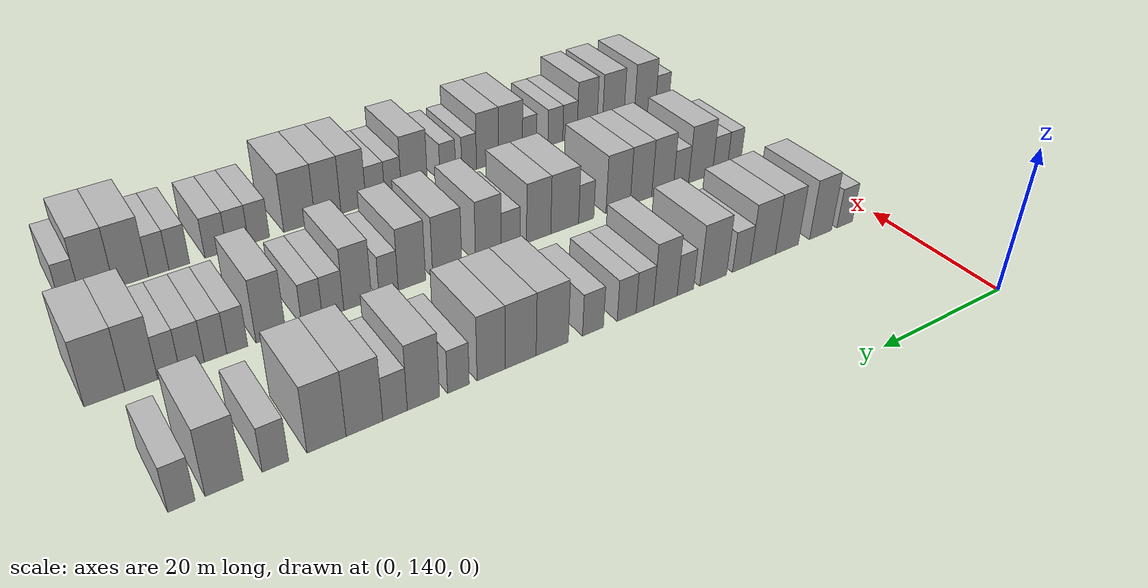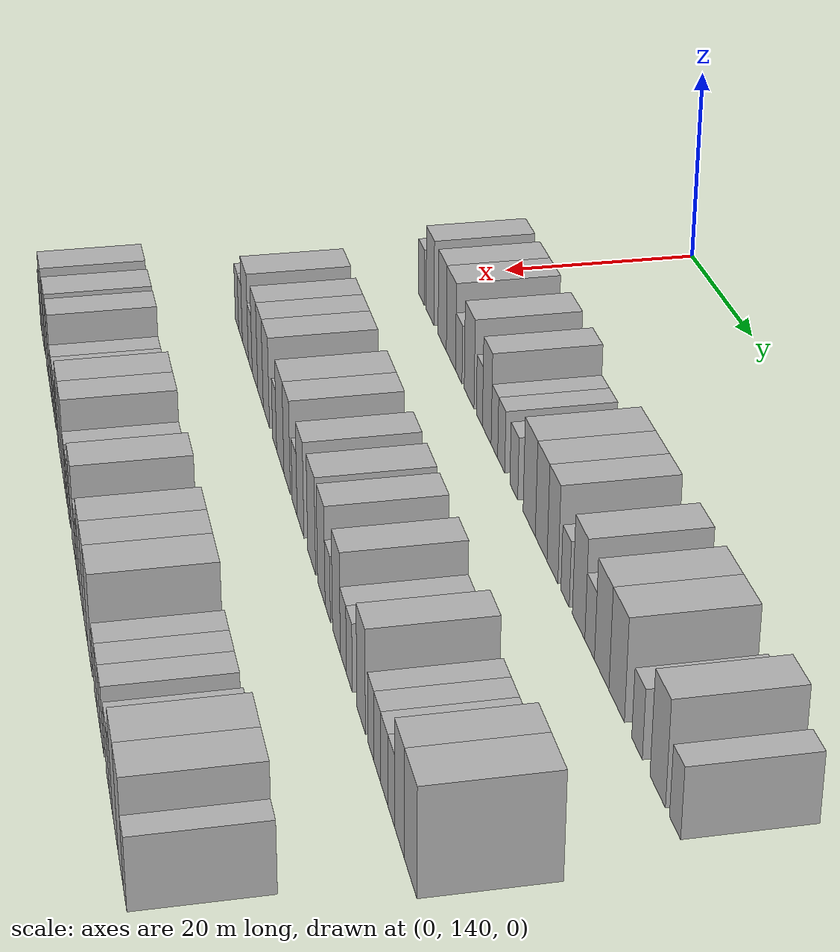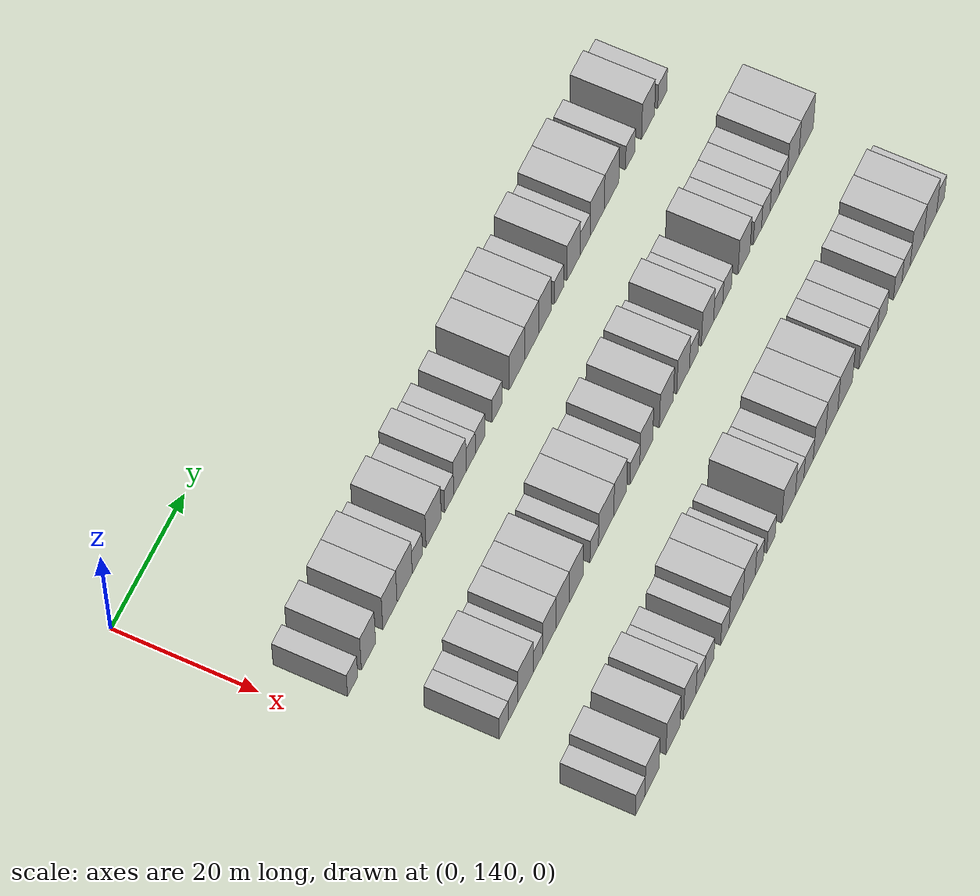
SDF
<sdf version="1.6">
 <world name="default">
  <model name="building_94">
   <static>1</static>
   <pose>25.0000 145.4608 0 0.000000 0.000000 0.000000</pose>
   <link name="link">
    <pose>0 0 3.00 0 0 0</pose>
    <collision name="collision"><geometry><box><size>10.0000 2.8447 6.0000</size></box></geometry></collision>
    <visual name="visual">
     <cast_shadows>0</cast_shadows>
     <geometry><box><size>10.0000 2.8447 6.0000</size></box></geometry>
     <material>
      <script>
       <uri>model://HANNAS_wall/materials/scripts</uri>
       <uri>model://HANNAS_wall/materials/textures</uri>
       <name>vrc/HANNAS_wall</name>
      </script>
     </material>
    </visual>
   </link>
  </model>
  <model name="building_95">
   <static>1</static>
   <pose>25.0000 149.8707 0 0.000000 0.000000 0.000000</pose>
   <link name="link">
    <pose>0 0 4.50 0 0 0</pose>
    <collision name="collision"><geometry><box><size>10.0000 3.9750 9.0000</size></box></geometry></collision>
    <visual name="visual">
     <cast_shadows>0</cast_shadows>
     <geometry><box><size>10.0000 3.9750 9.0000</size></box></geometry>
     <material>
      <script>
       <uri>model://HANNAS_wall/materials/scripts</uri>
       <uri>model://HANNAS_wall/materials/textures</uri>
       <name>vrc/HANNAS_wall</name>
      </script>
     </material>
    </visual>
   </link>
  </model>
  <model name="building_96">
   <static>1</static>
   <pose>25.0000 155.8541 0 0.000000 0.000000 0.000000</pose>
   <link name="link">
    <pose>0 0 4.50 0 0 0</pose>
    <collision name="collision"><geometry><box><size>10.0000 3.9918 9.0000</size></box></geometry></collision>
    <visual name="visual">
     <cast_shadows>0</cast_shadows>
     <geometry><box><size>10.0000 3.9918 9.0000</size></box></geometry>
     <material>
      <script>
       <uri>model://HANNAS_wall/materials/scripts</uri>
       <uri>model://HANNAS_wall/materials/textures</uri>
       <name>vrc/HANNAS_wall</name>
      </script>
     </material>
    </visual>
   </link>
  </model>
  <model name="building_97">
   <static>1</static>
   <pose>25.0000 159.9888 0 0.000000 0.000000 0.000000</pose>
   <link name="link">
    <pose>0 0 4.50 0 0 0</pose>
    <collision name="collision"><geometry><box><size>10.0000 4.2777 9.0000</size></box></geometry></collision>
    <visual name="visual">
     <cast_shadows>0</cast_shadows>
     <geometry><box><size>10.0000 4.2777 9.0000</size></box></geometry>
     <material>
      <script>
       <uri>model://HANNAS_wall/materials/scripts</uri>
       <uri>model://HANNAS_wall/materials/textures</uri>
       <name>vrc/HANNAS_wall</name>
      </script>
     </material>
    </visual>
   </link>
  </model>
  <model name="building_98">
   <static>1</static>
   <pose>25.0000 163.5937 0 0.000000 0.000000 0.000000</pose>
   <link name="link">
    <pose>0 0 3.00 0 0 0</pose>
    <collision name="collision"><geometry><box><size>10.0000 2.9319 6.0000</size></box></geometry></collision>
    <visual name="visual">
     <cast_shadows>0</cast_shadows>
     <geometry><box><size>10.0000 2.9319 6.0000</size></box></geometry>
     <material>
      <script>
       <uri>model://HANNAS_wall/materials/scripts</uri>
       <uri>model://HANNAS_wall/materials/textures</uri>
       <name>vrc/HANNAS_wall</name>
      </script>
     </material>
    </visual>
   </link>
  </model>
  <model name="building_99">
   <static>1</static>
   <pose>25.0000 168.2028 0 0.000000 0.000000 0.000000</pose>
   <link name="link">
    <pose>0 0 4.50 0 0 0</pose>
    <collision name="collision"><geometry><box><size>10.0000 4.2863 9.0000</size></box></geometry></collision>
    <visual name="visual">
     <cast_shadows>0</cast_shadows>
     <geometry><box><size>10.0000 4.2863 9.0000</size></box></geometry>
     <material>
      <script>
       <uri>model://HANNAS_wall/materials/scripts</uri>
       <uri>model://HANNAS_wall/materials/textures</uri>
       <name>vrc/HANNAS_wall</name>
      </script>
     </material>
    </visual>
   </link>
  </model>
  <model name="building_100">
   <static>1</static>
   <pose>25.0000 172.6326 0 0.000000 0.000000 0.000000</pose>
   <link name="link">
    <pose>0 0 3.00 0 0 0</pose>
    <collision name="collision"><geometry><box><size>10.0000 2.5733 6.0000</size></box></geometry></collision>
    <visual name="visual">
     <cast_shadows>0</cast_shadows>
     <geometry><box><size>10.0000 2.5733 6.0000</size></box></geometry>
     <material>
      <script>
       <uri>model://HANNAS_wall/materials/scripts</uri>
       <uri>model://HANNAS_wall/materials/textures</uri>
       <name>vrc/HANNAS_wall</name>
      </script>
     </material>
    </visual>
   </link>
  </model>
  <model name="building_101">
   <static>1</static>
   <pose>25.0000 175.7271 0 0.000000 0.000000 0.000000</pose>
   <link name="link">
    <pose>0 0 4.50 0 0 0</pose>
    <collision name="collision"><geometry><box><size>10.0000 3.6157 9.0000</size></box></geometry></collision>
    <visual name="visual">
     <cast_shadows>0</cast_shadows>
     <geometry><box><size>10.0000 3.6157 9.0000</size></box></geometry>
     <material>
      <script>
       <uri>model://HANNAS_wall/materials/scripts</uri>
       <uri>model://HANNAS_wall/materials/textures</uri>
       <name>vrc/HANNAS_wall</name>
      </script>
     </material>
    </visual>
   </link>
  </model>
  <model name="building_102">
   <static>1</static>
   <pose>25.0000 178.8511 0 0.000000 0.000000 0.000000</pose>
   <link name="link">
    <pose>0 0 3.00 0 0 0</pose>
    <collision name="collision"><geometry><box><size>10.0000 2.6323 6.0000</size></box></geometry></collision>
    <visual name="visual">
     <cast_shadows>0</cast_shadows>
     <geometry><box><size>10.0000 2.6323 6.0000</size></box></geometry>
     <material>
      <script>
       <uri>model://HANNAS_wall/materials/scripts</uri>
       <uri>model://HANNAS_wall/materials/textures</uri>
       <name>vrc/HANNAS_wall</name>
      </script>
     </material>
    </visual>
   </link>
  </model>
  <model name="building_103">
   <static>1</static>
   <pose>25.0000 181.5651 0 0.000000 0.000000 0.000000</pose>
   <link name="link">
    <pose>0 0 3.00 0 0 0</pose>
    <collision name="collision"><geometry><box><size>10.0000 2.7957 6.0000</size></box></geometry></collision>
    <visual name="visual">
     <cast_shadows>0</cast_shadows>
     <geometry><box><size>10.0000 2.7957 6.0000</size></box></geometry>
     <material>
      <script>
       <uri>model://HANNAS_wall/materials/scripts</uri>
       <uri>model://HANNAS_wall/materials/textures</uri>
       <name>vrc/HANNAS_wall</name>
      </script>
     </material>
    </visual>
   </link>
  </model>
  <model name="building_104">
   <static>1</static>
   <pose>25.0000 186.4575 0 0.000000 0.000000 0.000000</pose>
   <link name="link">
    <pose>0 0 3.00 0 0 0</pose>
    <collision name="collision"><geometry><box><size>10.0000 2.9891 6.0000</size></box></geometry></collision>
    <visual name="visual">
     <cast_shadows>0</cast_shadows>
     <geometry><box><size>10.0000 2.9891 6.0000</size></box></geometry>
     <material>
      <script>
       <uri>model://HANNAS_wall/materials/scripts</uri>
       <uri>model://HANNAS_wall/materials/textures</uri>
       <name>vrc/HANNAS_wall</name>
      </script>
     </material>
    </visual>
   </link>
  </model>
  <model name="building_105">
   <static>1</static>
   <pose>25.0000 192.1635 0 0.000000 0.000000 0.000000</pose>
   <link name="link">
    <pose>0 0 4.50 0 0 0</pose>
    <collision name="collision"><geometry><box><size>10.0000 4.4229 9.0000</size></box></geometry></collision>
    <visual name="visual">
     <cast_shadows>0</cast_shadows>
     <geometry><box><size>10.0000 4.4229 9.0000</size></box></geometry>
     <material>
      <script>
       <uri>model://HANNAS_wall/materials/scripts</uri>
       <uri>model://HANNAS_wall/materials/textures</uri>
       <name>vrc/HANNAS_wall</name>
      </script>
     </material>
    </visual>
   </link>
  </model>
  <model name="building_106">
   <static>1</static>
   <pose>25.0000 196.4367 0 0.000000 0.000000 0.000000</pose>
   <link name="link">
    <pose>0 0 4.50 0 0 0</pose>
    <collision name="collision"><geometry><box><size>10.0000 4.1234 9.0000</size></box></geometry></collision>
    <visual name="visual">
     <cast_shadows>0</cast_shadows>
     <geometry><box><size>10.0000 4.1234 9.0000</size></box></geometry>
     <material>
      <script>
       <uri>model://HANNAS_wall/materials/scripts</uri>
       <uri>model://HANNAS_wall/materials/textures</uri>
       <name>vrc/HANNAS_wall</name>
      </script>
     </material>
    </visual>
   </link>
  </model>
  <model name="building_107">
   <static>1</static>
   <pose>25.0000 200.3251 0 0.000000 0.000000 0.000000</pose>
   <link name="link">
    <pose>0 0 4.50 0 0 0</pose>
    <collision name="collision"><geometry><box><size>10.0000 3.6534 9.0000</size></box></geometry></collision>
    <visual name="visual">
     <cast_shadows>0</cast_shadows>
     <geometry><box><size>10.0000 3.6534 9.0000</size></box></geometry>
     <material>
      <script>
       <uri>model://HANNAS_wall/materials/scripts</uri>
       <uri>model://HANNAS_wall/materials/textures</uri>
       <name>vrc/HANNAS_wall</name>
      </script>
     </material>
    </visual>
   </link>
  </model>
  <model name="building_108">
   <static>1</static>
   <pose>25.0000 204.5141 0 0.000000 0.000000 0.000000</pose>
   <link name="link">
    <pose>0 0 3.00 0 0 0</pose>
    <collision name="collision"><geometry><box><size>10.0000 2.7248 6.0000</size></box></geometry></collision>
    <visual name="visual">
     <cast_shadows>0</cast_shadows>
     <geometry><box><size>10.0000 2.7248 6.0000</size></box></geometry>
     <material>
      <script>
       <uri>model://HANNAS_wall/materials/scripts</uri>
       <uri>model://HANNAS_wall/materials/textures</uri>
       <name>vrc/HANNAS_wall</name>
      </script>
     </material>
    </visual>
   </link>
  </model>
  <model name="building_109">
   <static>1</static>
   <pose>25.0000 208.8395 0 0.000000 0.000000 0.000000</pose>
   <link name="link">
    <pose>0 0 4.50 0 0 0</pose>
    <collision name="collision"><geometry><box><size>10.0000 3.9260 9.0000</size></box></geometry></collision>
    <visual name="visual">
     <cast_shadows>0</cast_shadows>
     <geometry><box><size>10.0000 3.9260 9.0000</size></box></geometry>
     <material>
      <script>
       <uri>model://HANNAS_wall/materials/scripts</uri>
       <uri>model://HANNAS_wall/materials/textures</uri>
       <name>vrc/HANNAS_wall</name>
      </script>
     </material>
    </visual>
   </link>
  </model>
  <model name="building_110">
   <static>1</static>
   <pose>25.0000 212.2672 0 0.000000 0.000000 0.000000</pose>
   <link name="link">
    <pose>0 0 3.00 0 0 0</pose>
    <collision name="collision"><geometry><box><size>10.0000 2.9293 6.0000</size></box></geometry></collision>
    <visual name="visual">
     <cast_shadows>0</cast_shadows>
     <geometry><box><size>10.0000 2.9293 6.0000</size></box></geometry>
     <material>
      <script>
       <uri>model://HANNAS_wall/materials/scripts</uri>
       <uri>model://HANNAS_wall/materials/textures</uri>
       <name>vrc/HANNAS_wall</name>
      </script>
     </material>
    </visual>
   </link>
  </model>
  <model name="building_111">
   <static>1</static>
   <pose>25.0000 215.8598 0 0.000000 0.000000 0.000000</pose>
   <link name="link">
    <pose>0 0 4.50 0 0 0</pose>
    <collision name="collision"><geometry><box><size>10.0000 4.2559 9.0000</size></box></geometry></collision>
    <visual name="visual">
     <cast_shadows>0</cast_shadows>
     <geometry><box><size>10.0000 4.2559 9.0000</size></box></geometry>
     <material>
      <script>
       <uri>model://HANNAS_wall/materials/scripts</uri>
       <uri>model://HANNAS_wall/materials/textures</uri>
       <name>vrc/HANNAS_wall</name>
      </script>
     </material>
    </visual>
   </link>
  </model>
  <model name="building_112">
   <static>1</static>
   <pose>25.0000 220.1812 0 0.000000 0.000000 0.000000</pose>
   <link name="link">
    <pose>0 0 4.50 0 0 0</pose>
    <collision name="collision"><geometry><box><size>10.0000 4.3871 9.0000</size></box></geometry></collision>
    <visual name="visual">
     <cast_shadows>0</cast_shadows>
     <geometry><box><size>10.0000 4.3871 9.0000</size></box></geometry>
     <material>
      <script>
       <uri>model://HANNAS_wall/materials/scripts</uri>
       <uri>model://HANNAS_wall/materials/textures</uri>
       <name>vrc/HANNAS_wall</name>
      </script>
     </material>
    </visual>
   </link>
  </model>
  <model name="building_113">
   <static>1</static>
   <pose>25.0000 225.7979 0 0.000000 0.000000 0.000000</pose>
   <link name="link">
    <pose>0 0 3.00 0 0 0</pose>
    <collision name="collision"><geometry><box><size>10.0000 2.8462 6.0000</size></box></geometry></collision>
    <visual name="visual">
     <cast_shadows>0</cast_shadows>
     <geometry><box><size>10.0000 2.8462 6.0000</size></box></geometry>
     <material>
      <script>
       <uri>model://HANNAS_wall/materials/scripts</uri>
       <uri>model://HANNAS_wall/materials/textures</uri>
       <name>vrc/HANNAS_wall</name>
      </script>
     </material>
    </visual>
   </link>
  </model>
  <model name="building_114">
   <static>1</static>
   <pose>25.0000 231.1885 0 0.000000 0.000000 0.000000</pose>
   <link name="link">
    <pose>0 0 4.50 0 0 0</pose>
    <collision name="collision"><geometry><box><size>10.0000 3.9350 9.0000</size></box></geometry></collision>
    <visual name="visual">
     <cast_shadows>0</cast_shadows>
     <geometry><box><size>10.0000 3.9350 9.0000</size></box></geometry>
     <material>
      <script>
       <uri>model://HANNAS_wall/materials/scripts</uri>
       <uri>model://HANNAS_wall/materials/textures</uri>
       <name>vrc/HANNAS_wall</name>
      </script>
     </material>
    </visual>
   </link>
  </model>
  <model name="building_115">
   <static>1</static>
   <pose>25.0000 235.5178 0 0.000000 0.000000 0.000000</pose>
   <link name="link">
    <pose>0 0 3.00 0 0 0</pose>
    <collision name="collision"><geometry><box><size>10.0000 2.7237 6.0000</size></box></geometry></collision>
    <visual name="visual">
     <cast_shadows>0</cast_shadows>
     <geometry><box><size>10.0000 2.7237 6.0000</size></box></geometry>
     <material>
      <script>
       <uri>model://HANNAS_wall/materials/scripts</uri>
       <uri>model://HANNAS_wall/materials/textures</uri>
       <name>vrc/HANNAS_wall</name>
      </script>
     </material>
    </visual>
   </link>
  </model>
  <model name="building_212">
   <static>1</static>
   <pose>44.0000 147.9745 0 0.000000 0.000000 0.000000</pose>
   <link name="link">
    <pose>0 0 3.00 0 0 0</pose>
    <collision name="collision"><geometry><box><size>10.0000 2.5103 6.0000</size></box></geometry></collision>
    <visual name="visual">
     <cast_shadows>0</cast_shadows>
     <geometry><box><size>10.0000 2.5103 6.0000</size></box></geometry>
     <material>
      <script>
       <uri>model://HANNAS_wall/materials/scripts</uri>
       <uri>model://HANNAS_wall/materials/textures</uri>
       <name>vrc/HANNAS_wall</name>
      </script>
     </material>
    </visual>
   </link>
  </model>
  <model name="building_213">
   <static>1</static>
   <pose>44.0000 150.6181 0 0.000000 0.000000 0.000000</pose>
   <link name="link">
    <pose>0 0 3.00 0 0 0</pose>
    <collision name="collision"><geometry><box><size>10.0000 2.7769 6.0000</size></box></geometry></collision>
    <visual name="visual">
     <cast_shadows>0</cast_shadows>
     <geometry><box><size>10.0000 2.7769 6.0000</size></box></geometry>
     <material>
      <script>
       <uri>model://HANNAS_wall/materials/scripts</uri>
       <uri>model://HANNAS_wall/materials/textures</uri>
       <name>vrc/HANNAS_wall</name>
      </script>
     </material>
    </visual>
   </link>
  </model>
  <model name="building_214">
   <static>1</static>
   <pose>44.0000 154.1711 0 0.000000 0.000000 0.000000</pose>
   <link name="link">
    <pose>0 0 4.50 0 0 0</pose>
    <collision name="collision"><geometry><box><size>10.0000 4.3291 9.0000</size></box></geometry></collision>
    <visual name="visual">
     <cast_shadows>0</cast_shadows>
     <geometry><box><size>10.0000 4.3291 9.0000</size></box></geometry>
     <material>
      <script>
       <uri>model://HANNAS_wall/materials/scripts</uri>
       <uri>model://HANNAS_wall/materials/textures</uri>
       <name>vrc/HANNAS_wall</name>
      </script>
     </material>
    </visual>
   </link>
  </model>
  <model name="building_215">
   <static>1</static>
   <pose>44.0000 157.7133 0 0.000000 0.000000 0.000000</pose>
   <link name="link">
    <pose>0 0 3.00 0 0 0</pose>
    <collision name="collision"><geometry><box><size>10.0000 2.7553 6.0000</size></box></geometry></collision>
    <visual name="visual">
     <cast_shadows>0</cast_shadows>
     <geometry><box><size>10.0000 2.7553 6.0000</size></box></geometry>
     <material>
      <script>
       <uri>model://HANNAS_wall/materials/scripts</uri>
       <uri>model://HANNAS_wall/materials/textures</uri>
       <name>vrc/HANNAS_wall</name>
      </script>
     </material>
    </visual>
   </link>
  </model>
  <model name="building_216">
   <static>1</static>
   <pose>44.0000 160.9885 0 0.000000 0.000000 0.000000</pose>
   <link name="link">
    <pose>0 0 4.50 0 0 0</pose>
    <collision name="collision"><geometry><box><size>10.0000 3.7953 9.0000</size></box></geometry></collision>
    <visual name="visual">
     <cast_shadows>0</cast_shadows>
     <geometry><box><size>10.0000 3.7953 9.0000</size></box></geometry>
     <material>
      <script>
       <uri>model://HANNAS_wall/materials/scripts</uri>
       <uri>model://HANNAS_wall/materials/textures</uri>
       <name>vrc/HANNAS_wall</name>
      </script>
     </material>
    </visual>
   </link>
  </model>
  <model name="building_217">
   <static>1</static>
   <pose>44.0000 164.7401 0 0.000000 0.000000 0.000000</pose>
   <link name="link">
    <pose>0 0 4.50 0 0 0</pose>
    <collision name="collision"><geometry><box><size>10.0000 3.7078 9.0000</size></box></geometry></collision>
    <visual name="visual">
     <cast_shadows>0</cast_shadows>
     <geometry><box><size>10.0000 3.7078 9.0000</size></box></geometry>
     <material>
      <script>
       <uri>model://HANNAS_wall/materials/scripts</uri>
       <uri>model://HANNAS_wall/materials/textures</uri>
       <name>vrc/HANNAS_wall</name>
      </script>
     </material>
    </visual>
   </link>
  </model>
  <model name="building_218">
   <static>1</static>
   <pose>44.0000 168.6344 0 0.000000 0.000000 0.000000</pose>
   <link name="link">
    <pose>0 0 4.50 0 0 0</pose>
    <collision name="collision"><geometry><box><size>10.0000 4.0809 9.0000</size></box></geometry></collision>
    <visual name="visual">
     <cast_shadows>0</cast_shadows>
     <geometry><box><size>10.0000 4.0809 9.0000</size></box></geometry>
     <material>
      <script>
       <uri>model://HANNAS_wall/materials/scripts</uri>
       <uri>model://HANNAS_wall/materials/textures</uri>
       <name>vrc/HANNAS_wall</name>
      </script>
     </material>
    </visual>
   </link>
  </model>
  <model name="building_219">
   <static>1</static>
   <pose>44.0000 173.9132 0 0.000000 0.000000 0.000000</pose>
   <link name="link">
    <pose>0 0 3.00 0 0 0</pose>
    <collision name="collision"><geometry><box><size>10.0000 2.4769 6.0000</size></box></geometry></collision>
    <visual name="visual">
     <cast_shadows>0</cast_shadows>
     <geometry><box><size>10.0000 2.4769 6.0000</size></box></geometry>
     <material>
      <script>
       <uri>model://HANNAS_wall/materials/scripts</uri>
       <uri>model://HANNAS_wall/materials/textures</uri>
       <name>vrc/HANNAS_wall</name>
      </script>
     </material>
    </visual>
   </link>
  </model>
  <model name="building_220">
   <static>1</static>
   <pose>44.0000 177.3739 0 0.000000 0.000000 0.000000</pose>
   <link name="link">
    <pose>0 0 4.50 0 0 0</pose>
    <collision name="collision"><geometry><box><size>10.0000 4.4444 9.0000</size></box></geometry></collision>
    <visual name="visual">
     <cast_shadows>0</cast_shadows>
     <geometry><box><size>10.0000 4.4444 9.0000</size></box></geometry>
     <material>
      <script>
       <uri>model://HANNAS_wall/materials/scripts</uri>
       <uri>model://HANNAS_wall/materials/textures</uri>
       <name>vrc/HANNAS_wall</name>
      </script>
     </material>
    </visual>
   </link>
  </model>
  <model name="building_221">
   <static>1</static>
   <pose>44.0000 181.4880 0 0.000000 0.000000 0.000000</pose>
   <link name="link">
    <pose>0 0 4.50 0 0 0</pose>
    <collision name="collision"><geometry><box><size>10.0000 3.7838 9.0000</size></box></geometry></collision>
    <visual name="visual">
     <cast_shadows>0</cast_shadows>
     <geometry><box><size>10.0000 3.7838 9.0000</size></box></geometry>
     <material>
      <script>
       <uri>model://HANNAS_wall/materials/scripts</uri>
       <uri>model://HANNAS_wall/materials/textures</uri>
       <name>vrc/HANNAS_wall</name>
      </script>
     </material>
    </visual>
   </link>
  </model>
  <model name="building_222">
   <static>1</static>
   <pose>44.0000 185.8131 0 0.000000 0.000000 0.000000</pose>
   <link name="link">
    <pose>0 0 3.00 0 0 0</pose>
    <collision name="collision"><geometry><box><size>10.0000 2.8665 6.0000</size></box></geometry></collision>
    <visual name="visual">
     <cast_shadows>0</cast_shadows>
     <geometry><box><size>10.0000 2.8665 6.0000</size></box></geometry>
     <material>
      <script>
       <uri>model://HANNAS_wall/materials/scripts</uri>
       <uri>model://HANNAS_wall/materials/textures</uri>
       <name>vrc/HANNAS_wall</name>
      </script>
     </material>
    </visual>
   </link>
  </model>
  <model name="building_223">
   <static>1</static>
   <pose>44.0000 189.1461 0 0.000000 0.000000 0.000000</pose>
   <link name="link">
    <pose>0 0 4.50 0 0 0</pose>
    <collision name="collision"><geometry><box><size>10.0000 3.7995 9.0000</size></box></geometry></collision>
    <visual name="visual">
     <cast_shadows>0</cast_shadows>
     <geometry><box><size>10.0000 3.7995 9.0000</size></box></geometry>
     <material>
      <script>
       <uri>model://HANNAS_wall/materials/scripts</uri>
       <uri>model://HANNAS_wall/materials/textures</uri>
       <name>vrc/HANNAS_wall</name>
      </script>
     </material>
    </visual>
   </link>
  </model>
  <model name="building_224">
   <static>1</static>
   <pose>44.0000 195.1253 0 0.000000 0.000000 0.000000</pose>
   <link name="link">
    <pose>0 0 4.50 0 0 0</pose>
    <collision name="collision"><geometry><box><size>10.0000 4.1589 9.0000</size></box></geometry></collision>
    <visual name="visual">
     <cast_shadows>0</cast_shadows>
     <geometry><box><size>10.0000 4.1589 9.0000</size></box></geometry>
     <material>
      <script>
       <uri>model://HANNAS_wall/materials/scripts</uri>
       <uri>model://HANNAS_wall/materials/textures</uri>
       <name>vrc/HANNAS_wall</name>
      </script>
     </material>
    </visual>
   </link>
  </model>
  <model name="building_225">
   <static>1</static>
   <pose>44.0000 200.0999 0 0.000000 0.000000 0.000000</pose>
   <link name="link">
    <pose>0 0 4.50 0 0 0</pose>
    <collision name="collision"><geometry><box><size>10.0000 3.7903 9.0000</size></box></geometry></collision>
    <visual name="visual">
     <cast_shadows>0</cast_shadows>
     <geometry><box><size>10.0000 3.7903 9.0000</size></box></geometry>
     <material>
      <script>
       <uri>model://HANNAS_wall/materials/scripts</uri>
       <uri>model://HANNAS_wall/materials/textures</uri>
       <name>vrc/HANNAS_wall</name>
      </script>
     </material>
    </visual>
   </link>
  </model>
  <model name="building_226">
   <static>1</static>
   <pose>44.0000 203.2940 0 0.000000 0.000000 0.000000</pose>
   <link name="link">
    <pose>0 0 3.00 0 0 0</pose>
    <collision name="collision"><geometry><box><size>10.0000 2.5978 6.0000</size></box></geometry></collision>
    <visual name="visual">
     <cast_shadows>0</cast_shadows>
     <geometry><box><size>10.0000 2.5978 6.0000</size></box></geometry>
     <material>
      <script>
       <uri>model://HANNAS_wall/materials/scripts</uri>
       <uri>model://HANNAS_wall/materials/textures</uri>
       <name>vrc/HANNAS_wall</name>
      </script>
     </material>
    </visual>
   </link>
  </model>
  <model name="building_227">
   <static>1</static>
   <pose>44.0000 207.4356 0 0.000000 0.000000 0.000000</pose>
   <link name="link">
    <pose>0 0 4.50 0 0 0</pose>
    <collision name="collision"><geometry><box><size>10.0000 3.6854 9.0000</size></box></geometry></collision>
    <visual name="visual">
     <cast_shadows>0</cast_shadows>
     <geometry><box><size>10.0000 3.6854 9.0000</size></box></geometry>
     <material>
      <script>
       <uri>model://HANNAS_wall/materials/scripts</uri>
       <uri>model://HANNAS_wall/materials/textures</uri>
       <name>vrc/HANNAS_wall</name>
      </script>
     </material>
    </visual>
   </link>
  </model>
  <model name="building_228">
   <static>1</static>
   <pose>44.0000 210.6675 0 0.000000 0.000000 0.000000</pose>
   <link name="link">
    <pose>0 0 3.00 0 0 0</pose>
    <collision name="collision"><geometry><box><size>10.0000 2.7784 6.0000</size></box></geometry></collision>
    <visual name="visual">
     <cast_shadows>0</cast_shadows>
     <geometry><box><size>10.0000 2.7784 6.0000</size></box></geometry>
     <material>
      <script>
       <uri>model://HANNAS_wall/materials/scripts</uri>
       <uri>model://HANNAS_wall/materials/textures</uri>
       <name>vrc/HANNAS_wall</name>
      </script>
     </material>
    </visual>
   </link>
  </model>
  <model name="building_229">
   <static>1</static>
   <pose>44.0000 213.3754 0 0.000000 0.000000 0.000000</pose>
   <link name="link">
    <pose>0 0 3.00 0 0 0</pose>
    <collision name="collision"><geometry><box><size>10.0000 2.6373 6.0000</size></box></geometry></collision>
    <visual name="visual">
     <cast_shadows>0</cast_shadows>
     <geometry><box><size>10.0000 2.6373 6.0000</size></box></geometry>
     <material>
      <script>
       <uri>model://HANNAS_wall/materials/scripts</uri>
       <uri>model://HANNAS_wall/materials/textures</uri>
       <name>vrc/HANNAS_wall</name>
      </script>
     </material>
    </visual>
   </link>
  </model>
  <model name="building_230">
   <static>1</static>
   <pose>44.0000 218.5189 0 0.000000 0.000000 0.000000</pose>
   <link name="link">
    <pose>0 0 4.50 0 0 0</pose>
    <collision name="collision"><geometry><box><size>10.0000 3.6499 9.0000</size></box></geometry></collision>
    <visual name="visual">
     <cast_shadows>0</cast_shadows>
     <geometry><box><size>10.0000 3.6499 9.0000</size></box></geometry>
     <material>
      <script>
       <uri>model://HANNAS_wall/materials/scripts</uri>
       <uri>model://HANNAS_wall/materials/textures</uri>
       <name>vrc/HANNAS_wall</name>
      </script>
     </material>
    </visual>
   </link>
  </model>
  <model name="building_231">
   <static>1</static>
   <pose>44.0000 222.5987 0 0.000000 0.000000 0.000000</pose>
   <link name="link">
    <pose>0 0 3.00 0 0 0</pose>
    <collision name="collision"><geometry><box><size>10.0000 2.5097 6.0000</size></box></geometry></collision>
    <visual name="visual">
     <cast_shadows>0</cast_shadows>
     <geometry><box><size>10.0000 2.5097 6.0000</size></box></geometry>
     <material>
      <script>
       <uri>model://HANNAS_wall/materials/scripts</uri>
       <uri>model://HANNAS_wall/materials/textures</uri>
       <name>vrc/HANNAS_wall</name>
      </script>
     </material>
    </visual>
   </link>
  </model>
  <model name="building_232">
   <static>1</static>
   <pose>44.0000 225.1703 0 0.000000 0.000000 0.000000</pose>
   <link name="link">
    <pose>0 0 3.00 0 0 0</pose>
    <collision name="collision"><geometry><box><size>10.0000 2.6335 6.0000</size></box></geometry></collision>
    <visual name="visual">
     <cast_shadows>0</cast_shadows>
     <geometry><box><size>10.0000 2.6335 6.0000</size></box></geometry>
     <material>
      <script>
       <uri>model://HANNAS_wall/materials/scripts</uri>
       <uri>model://HANNAS_wall/materials/textures</uri>
       <name>vrc/HANNAS_wall</name>
      </script>
     </material>
    </visual>
   </link>
  </model>
  <model name="building_233">
   <static>1</static>
   <pose>44.0000 227.9041 0 0.000000 0.000000 0.000000</pose>
   <link name="link">
    <pose>0 0 3.00 0 0 0</pose>
    <collision name="collision"><geometry><box><size>10.0000 2.8340 6.0000</size></box></geometry></collision>
    <visual name="visual">
     <cast_shadows>0</cast_shadows>
     <geometry><box><size>10.0000 2.8340 6.0000</size></box></geometry>
     <material>
      <script>
       <uri>model://HANNAS_wall/materials/scripts</uri>
       <uri>model://HANNAS_wall/materials/textures</uri>
       <name>vrc/HANNAS_wall</name>
      </script>
     </material>
    </visual>
   </link>
  </model>
  <model name="building_234">
   <static>1</static>
   <pose>44.0000 230.5664 0 0.000000 0.000000 0.000000</pose>
   <link name="link">
    <pose>0 0 3.00 0 0 0</pose>
    <collision name="collision"><geometry><box><size>10.0000 2.4905 6.0000</size></box></geometry></collision>
    <visual name="visual">
     <cast_shadows>0</cast_shadows>
     <geometry><box><size>10.0000 2.4905 6.0000</size></box></geometry>
     <material>
      <script>
       <uri>model://HANNAS_wall/materials/scripts</uri>
       <uri>model://HANNAS_wall/materials/textures</uri>
       <name>vrc/HANNAS_wall</name>
      </script>
     </material>
    </visual>
   </link>
  </model>
  <model name="building_235">
   <static>1</static>
   <pose>44.0000 233.6203 0 0.000000 0.000000 0.000000</pose>
   <link name="link">
    <pose>0 0 4.50 0 0 0</pose>
    <collision name="collision"><geometry><box><size>10.0000 3.6174 9.0000</size></box></geometry></collision>
    <visual name="visual">
     <cast_shadows>0</cast_shadows>
     <geometry><box><size>10.0000 3.6174 9.0000</size></box></geometry>
     <material>
      <script>
       <uri>model://HANNAS_wall/materials/scripts</uri>
       <uri>model://HANNAS_wall/materials/textures</uri>
       <name>vrc/HANNAS_wall</name>
      </script>
     </material>
    </visual>
   </link>
  </model>
  <model name="building_236">
   <static>1</static>
   <pose>44.0000 237.6398 0 0.000000 0.000000 0.000000</pose>
   <link name="link">
    <pose>0 0 4.50 0 0 0</pose>
    <collision name="collision"><geometry><box><size>10.0000 4.4215 9.0000</size></box></geometry></collision>
    <visual name="visual">
     <cast_shadows>0</cast_shadows>
     <geometry><box><size>10.0000 4.4215 9.0000</size></box></geometry>
     <material>
      <script>
       <uri>model://HANNAS_wall/materials/scripts</uri>
       <uri>model://HANNAS_wall/materials/textures</uri>
       <name>vrc/HANNAS_wall</name>
      </script>
     </material>
    </visual>
   </link>
  </model>
  <model name="building_335">
   <static>1</static>
   <pose>63.0000 145.9177 0 0.000000 0.000000 0.000000</pose>
   <link name="link">
    <pose>0 0 3.00 0 0 0</pose>
    <collision name="collision"><geometry><box><size>10.0000 2.6739 6.0000</size></box></geometry></collision>
    <visual name="visual">
     <cast_shadows>0</cast_shadows>
     <geometry><box><size>10.0000 2.6739 6.0000</size></box></geometry>
     <material>
      <script>
       <uri>model://HANNAS_wall/materials/scripts</uri>
       <uri>model://HANNAS_wall/materials/textures</uri>
       <name>vrc/HANNAS_wall</name>
      </script>
     </material>
    </visual>
   </link>
  </model>
  <model name="building_336">
   <static>1</static>
   <pose>63.0000 149.3120 0 0.000000 0.000000 0.000000</pose>
   <link name="link">
    <pose>0 0 4.50 0 0 0</pose>
    <collision name="collision"><geometry><box><size>10.0000 4.1147 9.0000</size></box></geometry></collision>
    <visual name="visual">
     <cast_shadows>0</cast_shadows>
     <geometry><box><size>10.0000 4.1147 9.0000</size></box></geometry>
     <material>
      <script>
       <uri>model://HANNAS_wall/materials/scripts</uri>
       <uri>model://HANNAS_wall/materials/textures</uri>
       <name>vrc/HANNAS_wall</name>
      </script>
     </material>
    </visual>
   </link>
  </model>
  <model name="building_337">
   <static>1</static>
   <pose>63.0000 155.4007 0 0.000000 0.000000 0.000000</pose>
   <link name="link">
    <pose>0 0 4.50 0 0 0</pose>
    <collision name="collision"><geometry><box><size>10.0000 4.0626 9.0000</size></box></geometry></collision>
    <visual name="visual">
     <cast_shadows>0</cast_shadows>
     <geometry><box><size>10.0000 4.0626 9.0000</size></box></geometry>
     <material>
      <script>
       <uri>model://HANNAS_wall/materials/scripts</uri>
       <uri>model://HANNAS_wall/materials/textures</uri>
       <name>vrc/HANNAS_wall</name>
      </script>
     </material>
    </visual>
   </link>
  </model>
  <model name="building_338">
   <static>1</static>
   <pose>63.0000 160.2603 0 0.000000 0.000000 0.000000</pose>
   <link name="link">
    <pose>0 0 4.50 0 0 0</pose>
    <collision name="collision"><geometry><box><size>10.0000 3.6566 9.0000</size></box></geometry></collision>
    <visual name="visual">
     <cast_shadows>0</cast_shadows>
     <geometry><box><size>10.0000 3.6566 9.0000</size></box></geometry>
     <material>
      <script>
       <uri>model://HANNAS_wall/materials/scripts</uri>
       <uri>model://HANNAS_wall/materials/textures</uri>
       <name>vrc/HANNAS_wall</name>
      </script>
     </material>
    </visual>
   </link>
  </model>
  <model name="building_339">
   <static>1</static>
   <pose>63.0000 163.3775 0 0.000000 0.000000 0.000000</pose>
   <link name="link">
    <pose>0 0 3.00 0 0 0</pose>
    <collision name="collision"><geometry><box><size>10.0000 2.5779 6.0000</size></box></geometry></collision>
    <visual name="visual">
     <cast_shadows>0</cast_shadows>
     <geometry><box><size>10.0000 2.5779 6.0000</size></box></geometry>
     <material>
      <script>
       <uri>model://HANNAS_wall/materials/scripts</uri>
       <uri>model://HANNAS_wall/materials/textures</uri>
       <name>vrc/HANNAS_wall</name>
      </script>
     </material>
    </visual>
   </link>
  </model>
  <model name="building_340">
   <static>1</static>
   <pose>63.0000 165.9989 0 0.000000 0.000000 0.000000</pose>
   <link name="link">
    <pose>0 0 3.00 0 0 0</pose>
    <collision name="collision"><geometry><box><size>10.0000 2.6649 6.0000</size></box></geometry></collision>
    <visual name="visual">
     <cast_shadows>0</cast_shadows>
     <geometry><box><size>10.0000 2.6649 6.0000</size></box></geometry>
     <material>
      <script>
       <uri>model://HANNAS_wall/materials/scripts</uri>
       <uri>model://HANNAS_wall/materials/textures</uri>
       <name>vrc/HANNAS_wall</name>
      </script>
     </material>
    </visual>
   </link>
  </model>
  <model name="building_341">
   <static>1</static>
   <pose>63.0000 170.5617 0 0.000000 0.000000 0.000000</pose>
   <link name="link">
    <pose>0 0 3.00 0 0 0</pose>
    <collision name="collision"><geometry><box><size>10.0000 2.4607 6.0000</size></box></geometry></collision>
    <visual name="visual">
     <cast_shadows>0</cast_shadows>
     <geometry><box><size>10.0000 2.4607 6.0000</size></box></geometry>
     <material>
      <script>
       <uri>model://HANNAS_wall/materials/scripts</uri>
       <uri>model://HANNAS_wall/materials/textures</uri>
       <name>vrc/HANNAS_wall</name>
      </script>
     </material>
    </visual>
   </link>
  </model>
  <model name="building_342">
   <static>1</static>
   <pose>63.0000 173.8426 0 0.000000 0.000000 0.000000</pose>
   <link name="link">
    <pose>0 0 4.50 0 0 0</pose>
    <collision name="collision"><geometry><box><size>10.0000 4.1012 9.0000</size></box></geometry></collision>
    <visual name="visual">
     <cast_shadows>0</cast_shadows>
     <geometry><box><size>10.0000 4.1012 9.0000</size></box></geometry>
     <material>
      <script>
       <uri>model://HANNAS_wall/materials/scripts</uri>
       <uri>model://HANNAS_wall/materials/textures</uri>
       <name>vrc/HANNAS_wall</name>
      </script>
     </material>
    </visual>
   </link>
  </model>
  <model name="building_343">
   <static>1</static>
   <pose>63.0000 177.7346 0 0.000000 0.000000 0.000000</pose>
   <link name="link">
    <pose>0 0 4.50 0 0 0</pose>
    <collision name="collision"><geometry><box><size>10.0000 3.6830 9.0000</size></box></geometry></collision>
    <visual name="visual">
     <cast_shadows>0</cast_shadows>
     <geometry><box><size>10.0000 3.6830 9.0000</size></box></geometry>
     <material>
      <script>
       <uri>model://HANNAS_wall/materials/scripts</uri>
       <uri>model://HANNAS_wall/materials/textures</uri>
       <name>vrc/HANNAS_wall</name>
      </script>
     </material>
    </visual>
   </link>
  </model>
  <model name="building_344">
   <static>1</static>
   <pose>63.0000 180.7918 0 0.000000 0.000000 0.000000</pose>
   <link name="link">
    <pose>0 0 3.00 0 0 0</pose>
    <collision name="collision"><geometry><box><size>10.0000 2.4313 6.0000</size></box></geometry></collision>
    <visual name="visual">
     <cast_shadows>0</cast_shadows>
     <geometry><box><size>10.0000 2.4313 6.0000</size></box></geometry>
     <material>
      <script>
       <uri>model://HANNAS_wall/materials/scripts</uri>
       <uri>model://HANNAS_wall/materials/textures</uri>
       <name>vrc/HANNAS_wall</name>
      </script>
     </material>
    </visual>
   </link>
  </model>
  <model name="building_345">
   <static>1</static>
   <pose>63.0000 184.2698 0 0.000000 0.000000 0.000000</pose>
   <link name="link">
    <pose>0 0 3.00 0 0 0</pose>
    <collision name="collision"><geometry><box><size>10.0000 2.5247 6.0000</size></box></geometry></collision>
    <visual name="visual">
     <cast_shadows>0</cast_shadows>
     <geometry><box><size>10.0000 2.5247 6.0000</size></box></geometry>
     <material>
      <script>
       <uri>model://HANNAS_wall/materials/scripts</uri>
       <uri>model://HANNAS_wall/materials/textures</uri>
       <name>vrc/HANNAS_wall</name>
      </script>
     </material>
    </visual>
   </link>
  </model>
  <model name="building_346">
   <static>1</static>
   <pose>63.0000 189.5775 0 0.000000 0.000000 0.000000</pose>
   <link name="link">
    <pose>0 0 4.50 0 0 0</pose>
    <collision name="collision"><geometry><box><size>10.0000 4.0907 9.0000</size></box></geometry></collision>
    <visual name="visual">
     <cast_shadows>0</cast_shadows>
     <geometry><box><size>10.0000 4.0907 9.0000</size></box></geometry>
     <material>
      <script>
       <uri>model://HANNAS_wall/materials/scripts</uri>
       <uri>model://HANNAS_wall/materials/textures</uri>
       <name>vrc/HANNAS_wall</name>
      </script>
     </material>
    </visual>
   </link>
  </model>
  <model name="building_347">
   <static>1</static>
   <pose>63.0000 192.8959 0 0.000000 0.000000 0.000000</pose>
   <link name="link">
    <pose>0 0 3.00 0 0 0</pose>
    <collision name="collision"><geometry><box><size>10.0000 2.5462 6.0000</size></box></geometry></collision>
    <visual name="visual">
     <cast_shadows>0</cast_shadows>
     <geometry><box><size>10.0000 2.5462 6.0000</size></box></geometry>
     <material>
      <script>
       <uri>model://HANNAS_wall/materials/scripts</uri>
       <uri>model://HANNAS_wall/materials/textures</uri>
       <name>vrc/HANNAS_wall</name>
      </script>
     </material>
    </visual>
   </link>
  </model>
  <model name="building_348">
   <static>1</static>
   <pose>63.0000 195.5901 0 0.000000 0.000000 0.000000</pose>
   <link name="link">
    <pose>0 0 3.00 0 0 0</pose>
    <collision name="collision"><geometry><box><size>10.0000 2.8423 6.0000</size></box></geometry></collision>
    <visual name="visual">
     <cast_shadows>0</cast_shadows>
     <geometry><box><size>10.0000 2.8423 6.0000</size></box></geometry>
     <material>
      <script>
       <uri>model://HANNAS_wall/materials/scripts</uri>
       <uri>model://HANNAS_wall/materials/textures</uri>
       <name>vrc/HANNAS_wall</name>
      </script>
     </material>
    </visual>
   </link>
  </model>
  <model name="building_349">
   <static>1</static>
   <pose>63.0000 198.8785 0 0.000000 0.000000 0.000000</pose>
   <link name="link">
    <pose>0 0 4.50 0 0 0</pose>
    <collision name="collision"><geometry><box><size>10.0000 3.7345 9.0000</size></box></geometry></collision>
    <visual name="visual">
     <cast_shadows>0</cast_shadows>
     <geometry><box><size>10.0000 3.7345 9.0000</size></box></geometry>
     <material>
      <script>
       <uri>model://HANNAS_wall/materials/scripts</uri>
       <uri>model://HANNAS_wall/materials/textures</uri>
       <name>vrc/HANNAS_wall</name>
      </script>
     </material>
    </visual>
   </link>
  </model>
  <model name="building_350">
   <static>1</static>
   <pose>63.0000 202.6297 0 0.000000 0.000000 0.000000</pose>
   <link name="link">
    <pose>0 0 4.50 0 0 0</pose>
    <collision name="collision"><geometry><box><size>10.0000 3.7680 9.0000</size></box></geometry></collision>
    <visual name="visual">
     <cast_shadows>0</cast_shadows>
     <geometry><box><size>10.0000 3.7680 9.0000</size></box></geometry>
     <material>
      <script>
       <uri>model://HANNAS_wall/materials/scripts</uri>
       <uri>model://HANNAS_wall/materials/textures</uri>
       <name>vrc/HANNAS_wall</name>
      </script>
     </material>
    </visual>
   </link>
  </model>
  <model name="building_351">
   <static>1</static>
   <pose>63.0000 206.7453 0 0.000000 0.000000 0.000000</pose>
   <link name="link">
    <pose>0 0 4.50 0 0 0</pose>
    <collision name="collision"><geometry><box><size>10.0000 4.4631 9.0000</size></box></geometry></collision>
    <visual name="visual">
     <cast_shadows>0</cast_shadows>
     <geometry><box><size>10.0000 4.4631 9.0000</size></box></geometry>
     <material>
      <script>
       <uri>model://HANNAS_wall/materials/scripts</uri>
       <uri>model://HANNAS_wall/materials/textures</uri>
       <name>vrc/HANNAS_wall</name>
      </script>
     </material>
    </visual>
   </link>
  </model>
  <model name="building_352">
   <static>1</static>
   <pose>63.0000 212.4030 0 0.000000 0.000000 0.000000</pose>
   <link name="link">
    <pose>0 0 3.00 0 0 0</pose>
    <collision name="collision"><geometry><box><size>10.0000 2.8522 6.0000</size></box></geometry></collision>
    <visual name="visual">
     <cast_shadows>0</cast_shadows>
     <geometry><box><size>10.0000 2.8522 6.0000</size></box></geometry>
     <material>
      <script>
       <uri>model://HANNAS_wall/materials/scripts</uri>
       <uri>model://HANNAS_wall/materials/textures</uri>
       <name>vrc/HANNAS_wall</name>
      </script>
     </material>
    </visual>
   </link>
  </model>
  <model name="building_353">
   <static>1</static>
   <pose>63.0000 215.2927 0 0.000000 0.000000 0.000000</pose>
   <link name="link">
    <pose>0 0 3.00 0 0 0</pose>
    <collision name="collision"><geometry><box><size>10.0000 2.9272 6.0000</size></box></geometry></collision>
    <visual name="visual">
     <cast_shadows>0</cast_shadows>
     <geometry><box><size>10.0000 2.9272 6.0000</size></box></geometry>
     <material>
      <script>
       <uri>model://HANNAS_wall/materials/scripts</uri>
       <uri>model://HANNAS_wall/materials/textures</uri>
       <name>vrc/HANNAS_wall</name>
      </script>
     </material>
    </visual>
   </link>
  </model>
  <model name="building_354">
   <static>1</static>
   <pose>63.0000 218.2174 0 0.000000 0.000000 0.000000</pose>
   <link name="link">
    <pose>0 0 3.00 0 0 0</pose>
    <collision name="collision"><geometry><box><size>10.0000 2.9222 6.0000</size></box></geometry></collision>
    <visual name="visual">
     <cast_shadows>0</cast_shadows>
     <geometry><box><size>10.0000 2.9222 6.0000</size></box></geometry>
     <material>
      <script>
       <uri>model://HANNAS_wall/materials/scripts</uri>
       <uri>model://HANNAS_wall/materials/textures</uri>
       <name>vrc/HANNAS_wall</name>
      </script>
     </material>
    </visual>
   </link>
  </model>
  <model name="building_355">
   <static>1</static>
   <pose>63.0000 223.0128 0 0.000000 0.000000 0.000000</pose>
   <link name="link">
    <pose>0 0 3.00 0 0 0</pose>
    <collision name="collision"><geometry><box><size>10.0000 2.6686 6.0000</size></box></geometry></collision>
    <visual name="visual">
     <cast_shadows>0</cast_shadows>
     <geometry><box><size>10.0000 2.6686 6.0000</size></box></geometry>
     <material>
      <script>
       <uri>model://HANNAS_wall/materials/scripts</uri>
       <uri>model://HANNAS_wall/materials/textures</uri>
       <name>vrc/HANNAS_wall</name>
      </script>
     </material>
    </visual>
   </link>
  </model>
  <model name="building_356">
   <static>1</static>
   <pose>63.0000 225.6403 0 0.000000 0.000000 0.000000</pose>
   <link name="link">
    <pose>0 0 3.00 0 0 0</pose>
    <collision name="collision"><geometry><box><size>10.0000 2.5862 6.0000</size></box></geometry></collision>
    <visual name="visual">
     <cast_shadows>0</cast_shadows>
     <geometry><box><size>10.0000 2.5862 6.0000</size></box></geometry>
     <material>
      <script>
       <uri>model://HANNAS_wall/materials/scripts</uri>
       <uri>model://HANNAS_wall/materials/textures</uri>
       <name>vrc/HANNAS_wall</name>
      </script>
     </material>
    </visual>
   </link>
  </model>
  <model name="building_357">
   <static>1</static>
   <pose>63.0000 229.0594 0 0.000000 0.000000 0.000000</pose>
   <link name="link">
    <pose>0 0 4.50 0 0 0</pose>
    <collision name="collision"><geometry><box><size>10.0000 4.2521 9.0000</size></box></geometry></collision>
    <visual name="visual">
     <cast_shadows>0</cast_shadows>
     <geometry><box><size>10.0000 4.2521 9.0000</size></box></geometry>
     <material>
      <script>
       <uri>model://HANNAS_wall/materials/scripts</uri>
       <uri>model://HANNAS_wall/materials/textures</uri>
       <name>vrc/HANNAS_wall</name>
      </script>
     </material>
    </visual>
   </link>
  </model>
  <model name="building_358">
   <static>1</static>
   <pose>63.0000 233.2175 0 0.000000 0.000000 0.000000</pose>
   <link name="link">
    <pose>0 0 4.50 0 0 0</pose>
    <collision name="collision"><geometry><box><size>10.0000 4.0641 9.0000</size></box></geometry></collision>
    <visual name="visual">
     <cast_shadows>0</cast_shadows>
     <geometry><box><size>10.0000 4.0641 9.0000</size></box></geometry>
     <material>
      <script>
       <uri>model://HANNAS_wall/materials/scripts</uri>
       <uri>model://HANNAS_wall/materials/textures</uri>
       <name>vrc/HANNAS_wall</name>
      </script>
     </material>
    </visual>
   </link>
  </model>
  <model name="building_359">
   <static>1</static>
   <pose>63.0000 236.4539 0 0.000000 0.000000 0.000000</pose>
   <link name="link">
    <pose>0 0 3.00 0 0 0</pose>
    <collision name="collision"><geometry><box><size>10.0000 2.4086 6.0000</size></box></geometry></collision>
    <visual name="visual">
     <cast_shadows>0</cast_shadows>
     <geometry><box><size>10.0000 2.4086 6.0000</size></box></geometry>
     <material>
      <script>
       <uri>model://HANNAS_wall/materials/scripts</uri>
       <uri>model://HANNAS_wall/materials/textures</uri>
       <name>vrc/HANNAS_wall</name>
      </script>
     </material>
    </visual>
   </link>
  </model>
 </world>
</sdf>
